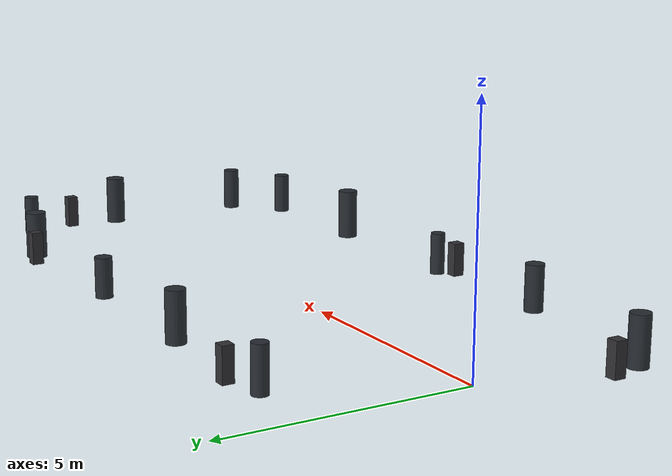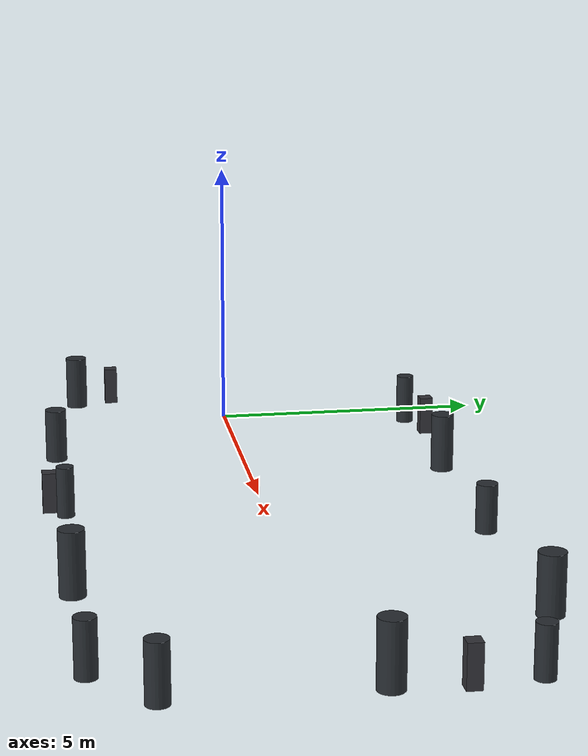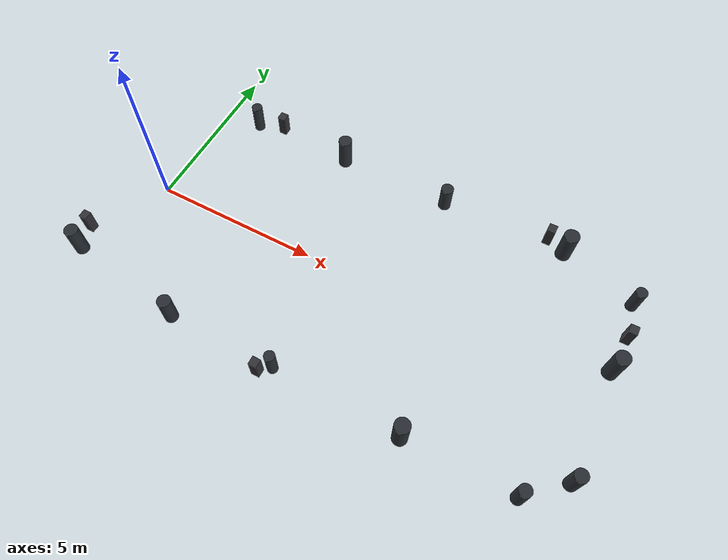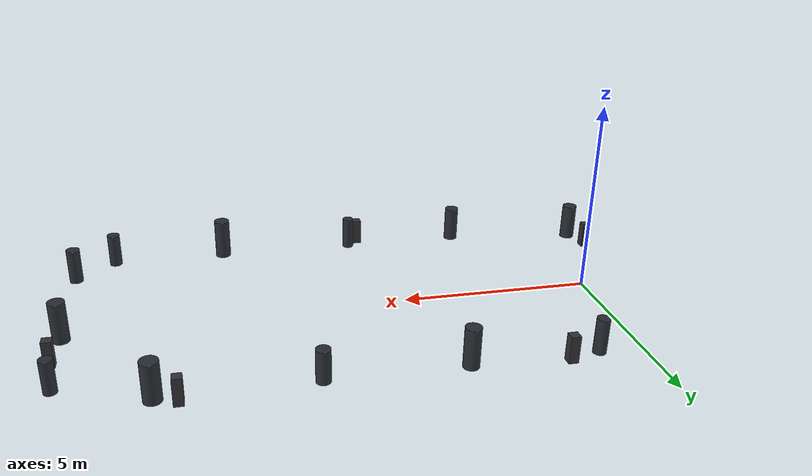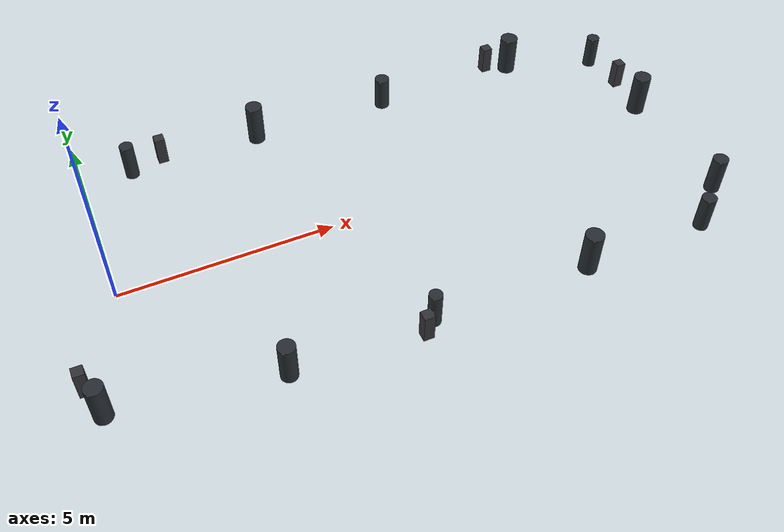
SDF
<?xml version="1.0"?>
<sdf version="1.6">
  <model name="pool_registration_landmarks">
    <static>true</static>
    <link name="tank_lidar_reference_post_a_link">
      <pose>2.00 3.68 0.45 0 0 0</pose>
      <collision name="post_collision">
        <geometry>
          <box>
            <size>0.24 0.24 0.70</size>
          </box>
        </geometry>
      </collision>
      <visual name="post_visual">
        <geometry>
          <box>
            <size>0.24 0.24 0.70</size>
          </box>
        </geometry>
        <material>
          <ambient>0.18 0.18 0.20 1</ambient>
          <diffuse>0.20 0.20 0.22 1</diffuse>
        </material>
      </visual>
    </link>
    <link name="tank_lidar_reference_post_b_link">
      <pose>5.60 -3.68 0.45 0 0 0</pose>
      <collision name="post_collision">
        <geometry>
          <box>
            <size>0.24 0.24 0.70</size>
          </box>
        </geometry>
      </collision>
      <visual name="post_visual">
        <geometry>
          <box>
            <size>0.24 0.24 0.70</size>
          </box>
        </geometry>
        <material>
          <ambient>0.18 0.18 0.20 1</ambient>
          <diffuse>0.20 0.20 0.22 1</diffuse>
        </material>
      </visual>
    </link>
    <link name="tank_lidar_reference_post_c_link">
      <pose>10.90 3.68 0.45 0 0 0</pose>
      <collision name="post_collision">
        <geometry>
          <box>
            <size>0.24 0.24 0.70</size>
          </box>
        </geometry>
      </collision>
      <visual name="post_visual">
        <geometry>
          <box>
            <size>0.24 0.24 0.70</size>
          </box>
        </geometry>
        <material>
          <ambient>0.18 0.18 0.20 1</ambient>
          <diffuse>0.20 0.20 0.22 1</diffuse>
        </material>
      </visual>
    </link>
    <link name="tank_lidar_reference_post_d_link">
      <pose>13.78 1.70 0.45 0 0 0</pose>
      <collision name="post_collision">
        <geometry>
          <box>
            <size>0.24 0.24 0.70</size>
          </box>
        </geometry>
      </collision>
      <visual name="post_visual">
        <geometry>
          <box>
            <size>0.24 0.24 0.70</size>
          </box>
        </geometry>
        <material>
          <ambient>0.18 0.18 0.20 1</ambient>
          <diffuse>0.20 0.20 0.22 1</diffuse>
        </material>
      </visual>
    </link>
    <link name="tank_lidar_reference_post_e_link">
      <pose>-1.08 -2.20 0.45 0 0 0</pose>
      <collision name="post_collision">
        <geometry>
          <box>
            <size>0.24 0.24 0.70</size>
          </box>
        </geometry>
      </collision>
      <visual name="post_visual">
        <geometry>
          <box>
            <size>0.24 0.24 0.70</size>
          </box>
        </geometry>
        <material>
          <ambient>0.18 0.18 0.20 1</ambient>
          <diffuse>0.20 0.20 0.22 1</diffuse>
        </material>
      </visual>
    </link>
    <link name="tank_lidar_registration_landmarks_link">
      <collision name="north_pylon_1_collision">
        <pose>1.20 3.45 0.56 0 0 0</pose>
        <geometry>
          <cylinder>
            <radius>0.16</radius>
            <length>0.92</length>
          </cylinder>
        </geometry>
      </collision>
      <visual name="north_pylon_1_visual">
        <pose>1.20 3.45 0.56 0 0 0</pose>
        <geometry>
          <cylinder>
            <radius>0.16</radius>
            <length>0.92</length>
          </cylinder>
        </geometry>
        <material>
          <ambient>0.12 0.14 0.16 1</ambient>
          <diffuse>0.16 0.18 0.20 1</diffuse>
        </material>
      </visual>
      <collision name="north_pylon_2_collision">
        <pose>4.35 3.47 0.62 0 0 0</pose>
        <geometry>
          <cylinder>
            <radius>0.20</radius>
            <length>1.04</length>
          </cylinder>
        </geometry>
      </collision>
      <visual name="north_pylon_2_visual">
        <pose>4.35 3.47 0.62 0 0 0</pose>
        <geometry>
          <cylinder>
            <radius>0.20</radius>
            <length>1.04</length>
          </cylinder>
        </geometry>
        <material>
          <ambient>0.12 0.14 0.16 1</ambient>
          <diffuse>0.16 0.18 0.20 1</diffuse>
        </material>
      </visual>
      <collision name="north_pylon_3_collision">
        <pose>7.75 3.43 0.52 0 0 0</pose>
        <geometry>
          <cylinder>
            <radius>0.18</radius>
            <length>0.84</length>
          </cylinder>
        </geometry>
      </collision>
      <visual name="north_pylon_3_visual">
        <pose>7.75 3.43 0.52 0 0 0</pose>
        <geometry>
          <cylinder>
            <radius>0.18</radius>
            <length>0.84</length>
          </cylinder>
        </geometry>
        <material>
          <ambient>0.12 0.14 0.16 1</ambient>
          <diffuse>0.16 0.18 0.20 1</diffuse>
        </material>
      </visual>
      <collision name="north_pylon_4_collision">
        <pose>11.45 3.46 0.60 0 0 0</pose>
        <geometry>
          <cylinder>
            <radius>0.22</radius>
            <length>1.00</length>
          </cylinder>
        </geometry>
      </collision>
      <visual name="north_pylon_4_visual">
        <pose>11.45 3.46 0.60 0 0 0</pose>
        <geometry>
          <cylinder>
            <radius>0.22</radius>
            <length>1.00</length>
          </cylinder>
        </geometry>
        <material>
          <ambient>0.12 0.14 0.16 1</ambient>
          <diffuse>0.16 0.18 0.20 1</diffuse>
        </material>
      </visual>
      <collision name="south_pylon_1_collision">
        <pose>2.70 -3.45 0.58 0 0 0</pose>
        <geometry>
          <cylinder>
            <radius>0.19</radius>
            <length>0.96</length>
          </cylinder>
        </geometry>
      </collision>
      <visual name="south_pylon_1_visual">
        <pose>2.70 -3.45 0.58 0 0 0</pose>
        <geometry>
          <cylinder>
            <radius>0.19</radius>
            <length>0.96</length>
          </cylinder>
        </geometry>
        <material>
          <ambient>0.12 0.14 0.16 1</ambient>
          <diffuse>0.16 0.18 0.20 1</diffuse>
        </material>
      </visual>
      <collision name="south_pylon_2_collision">
        <pose>5.90 -3.42 0.54 0 0 0</pose>
        <geometry>
          <cylinder>
            <radius>0.15</radius>
            <length>0.88</length>
          </cylinder>
        </geometry>
      </collision>
      <visual name="south_pylon_2_visual">
        <pose>5.90 -3.42 0.54 0 0 0</pose>
        <geometry>
          <cylinder>
            <radius>0.15</radius>
            <length>0.88</length>
          </cylinder>
        </geometry>
        <material>
          <ambient>0.12 0.14 0.16 1</ambient>
          <diffuse>0.16 0.18 0.20 1</diffuse>
        </material>
      </visual>
      <collision name="south_pylon_3_collision">
        <pose>9.60 -3.48 0.64 0 0 0</pose>
        <geometry>
          <cylinder>
            <radius>0.21</radius>
            <length>1.08</length>
          </cylinder>
        </geometry>
      </collision>
      <visual name="south_pylon_3_visual">
        <pose>9.60 -3.48 0.64 0 0 0</pose>
        <geometry>
          <cylinder>
            <radius>0.21</radius>
            <length>1.08</length>
          </cylinder>
        </geometry>
        <material>
          <ambient>0.12 0.14 0.16 1</ambient>
          <diffuse>0.16 0.18 0.20 1</diffuse>
        </material>
      </visual>
      <collision name="south_pylon_4_collision">
        <pose>12.65 -3.44 0.55 0 0 0</pose>
        <geometry>
          <cylinder>
            <radius>0.17</radius>
            <length>0.90</length>
          </cylinder>
        </geometry>
      </collision>
      <visual name="south_pylon_4_visual">
        <pose>12.65 -3.44 0.55 0 0 0</pose>
        <geometry>
          <cylinder>
            <radius>0.17</radius>
            <length>0.90</length>
          </cylinder>
        </geometry>
        <material>
          <ambient>0.12 0.14 0.16 1</ambient>
          <diffuse>0.16 0.18 0.20 1</diffuse>
        </material>
      </visual>
      <collision name="east_pylon_1_collision">
        <pose>13.65 -2.55 0.57 0 0 0</pose>
        <geometry>
          <cylinder>
            <radius>0.18</radius>
            <length>0.94</length>
          </cylinder>
        </geometry>
      </collision>
      <visual name="east_pylon_1_visual">
        <pose>13.65 -2.55 0.57 0 0 0</pose>
        <geometry>
          <cylinder>
            <radius>0.18</radius>
            <length>0.94</length>
          </cylinder>
        </geometry>
        <material>
          <ambient>0.12 0.14 0.16 1</ambient>
          <diffuse>0.16 0.18 0.20 1</diffuse>
        </material>
      </visual>
      <collision name="east_pylon_2_collision">
        <pose>13.67 0.60 0.63 0 0 0</pose>
        <geometry>
          <cylinder>
            <radius>0.21</radius>
            <length>1.06</length>
          </cylinder>
        </geometry>
      </collision>
      <visual name="east_pylon_2_visual">
        <pose>13.67 0.60 0.63 0 0 0</pose>
        <geometry>
          <cylinder>
            <radius>0.21</radius>
            <length>1.06</length>
          </cylinder>
        </geometry>
        <material>
          <ambient>0.12 0.14 0.16 1</ambient>
          <diffuse>0.16 0.18 0.20 1</diffuse>
        </material>
      </visual>
      <collision name="east_pylon_3_collision">
        <pose>13.64 2.75 0.52 0 0 0</pose>
        <geometry>
          <cylinder>
            <radius>0.16</radius>
            <length>0.84</length>
          </cylinder>
        </geometry>
      </collision>
      <visual name="east_pylon_3_visual">
        <pose>13.64 2.75 0.52 0 0 0</pose>
        <geometry>
          <cylinder>
            <radius>0.16</radius>
            <length>0.84</length>
          </cylinder>
        </geometry>
        <material>
          <ambient>0.12 0.14 0.16 1</ambient>
          <diffuse>0.16 0.18 0.20 1</diffuse>
        </material>
      </visual>
      <collision name="west_pylon_1_collision">
        <pose>-0.86 -2.90 0.60 0 0 0</pose>
        <geometry>
          <cylinder>
            <radius>0.20</radius>
            <length>1.00</length>
          </cylinder>
        </geometry>
      </collision>
      <visual name="west_pylon_1_visual">
        <pose>-0.86 -2.90 0.60 0 0 0</pose>
        <geometry>
          <cylinder>
            <radius>0.20</radius>
            <length>1.00</length>
          </cylinder>
        </geometry>
        <material>
          <ambient>0.12 0.14 0.16 1</ambient>
          <diffuse>0.16 0.18 0.20 1</diffuse>
        </material>
      </visual>
    </link>
  </model>
</sdf>
